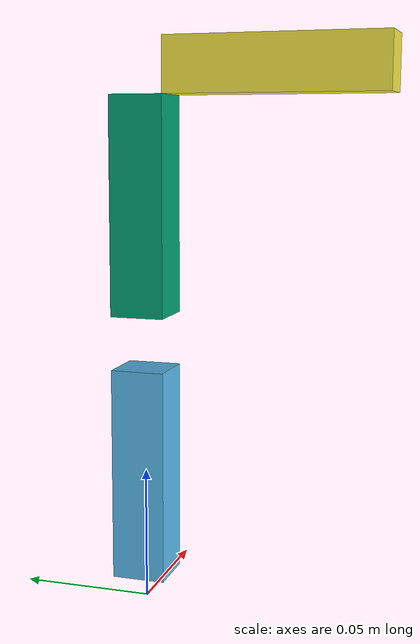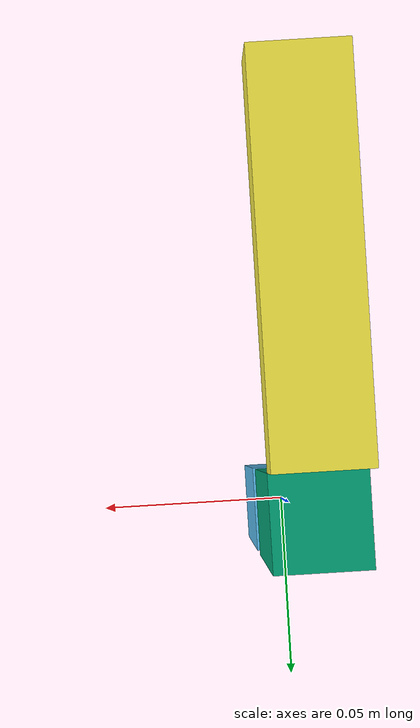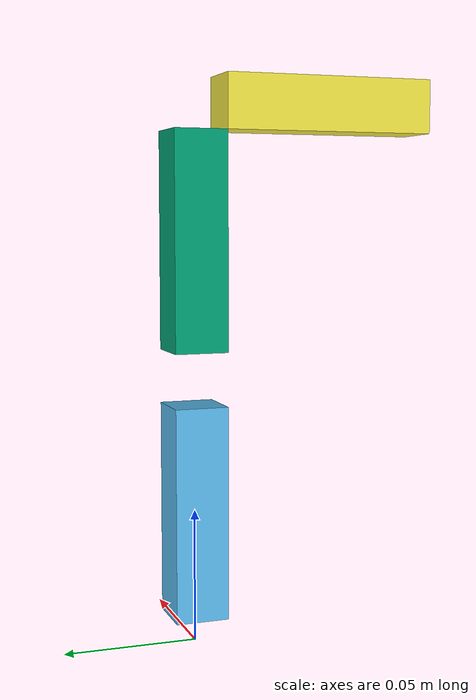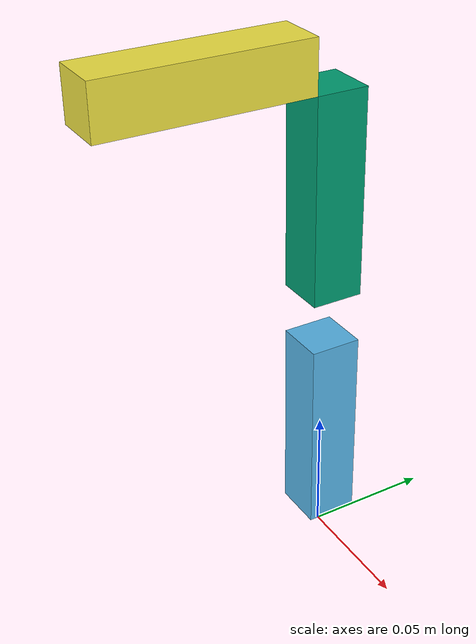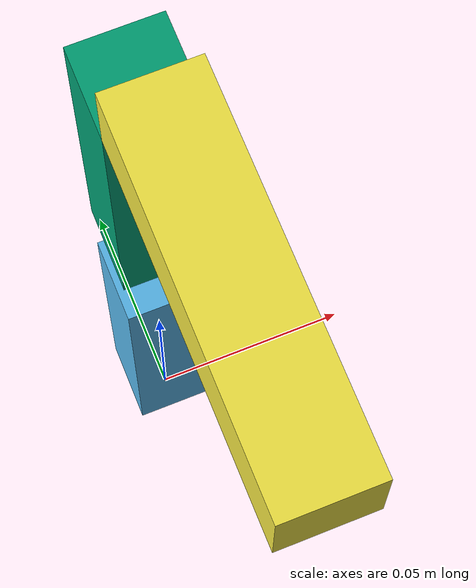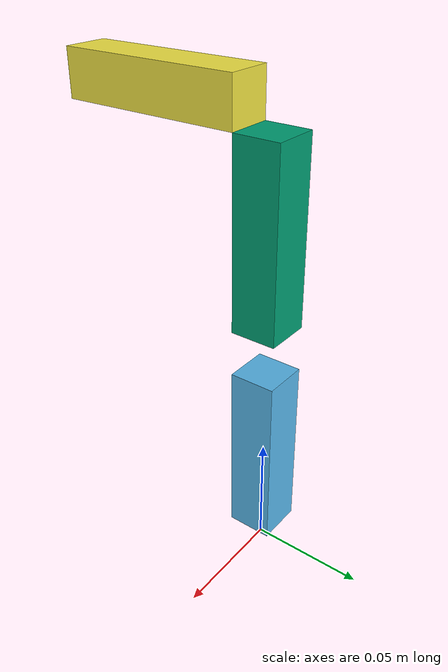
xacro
<?xml version="1.0" encoding="utf-8"?>
<robot xmlns:xacro="http://www.ros.org/wiki/xacro" name="stick">
  <!--Input arguments-->
  <xacro:arg name="xyz" default="0 0 0" />
  <xacro:arg name="rpy" default="0 0 0" />
  <xacro:arg name="rotated" default="false" />
  <xacro:arg name="robot_name" default="stick" />

  <!--Gazebo requires a joint to a link called "world" for statically mounted robots-->
  <link name="world" />
  <joint name="world_joint" type="fixed">
    <origin xyz="$(arg xyz)" rpy="$(arg rpy)" />
    <parent link="world" />
    <child link="$(arg robot_name)_link1" />
  </joint>

  <!--Create stick example links-->
  <link name="$(arg robot_name)_link1">
    <visual>
      <origin xyz="0 0 0.05" />
      <geometry>
        <box size="0.02 0.02 0.08" />
      </geometry>
    </visual>
    <collision>
      <origin xyz="0 0 0.05" />
      <geometry>
        <box size="0.02 0.02 0.08" />
      </geometry>
    </collision>
    <inertial>
      <origin xyz="0 0 0.05" />
      <mass value="${0.5*10./9.80}" />
      <inertia ixx="0.1" iyy="0.1" izz="0.1" ixy="0" ixz="0" iyz="0" />
    </inertial>
  </link>
  <link name="$(arg robot_name)_link2">
    <visual>
      <origin xyz="0 0 0.05" />
      <geometry>
        <box size="0.02 0.02 0.08" />
      </geometry>
    </visual>
    <collision>
      <origin xyz="0 0 0.05" />
      <geometry>
        <box size="0.02 0.02 0.08" />
      </geometry>
    </collision>
    <inertial>
      <origin xyz="0 0 0.05" />
      <mass value="${0.5*10./9.80}" />
      <inertia ixx="0.1" iyy="0.1" izz="0.1" ixy="0" ixz="0" iyz="0" />
    </inertial>
  </link>
  <link name="$(arg robot_name)_link3">
    <visual>
      <origin xyz="0 0 0.05" />
      <geometry>
        <box size="0.02 0.02 0.08" />
      </geometry>
    </visual>
    <collision>
      <origin xyz="0 0 0.05" />
      <geometry>
        <box size="0.02 0.02 0.08" />
      </geometry>
    </collision>
    <inertial>
      <origin xyz="0 0 0.05" />
      <mass value="${0.5*10./9.80}" />
      <inertia ixx="0.1" iyy="0.1" izz="0.1" ixy="0" ixz="0" iyz="0" />
    </inertial>
  </link>

  <!--Create stick joints-->
  <!--  Problem joint-->
  <xacro:if value="$(arg rotated)">    <!--With rotation-->
    <joint name="$(arg robot_name)_joint1" type="revolute">
      <safety_controller k_position="100.0" k_velocity="40.0" soft_lower_limit="-2.8973" soft_upper_limit="2.8973"/>
      <origin xyz="0 0 0.1" rpy="${pi/2} 0 0"/>
      <parent link="$(arg robot_name)_link1"/>
      <child link="$(arg robot_name)_link2"/>
      <axis xyz="0 0 1"/>
      <limit acceleration="15" lower="-2.9671" effort="87" upper="2.9671" velocity="2.5"/>
      <dynamics D="1" K="7000" mu_coulomb="0" mu_viscous="16" damping="0.003" friction="0.0"/>
    </joint>
  </xacro:if>
  <xacro:unless value="$(arg rotated)">
    <joint name="$(arg robot_name)_joint1" type="revolute">
      <safety_controller k_position="100.0" k_velocity="40.0" soft_lower_limit="-2.8973" soft_upper_limit="2.8973"/>
      <origin xyz="0 0 0.1" rpy="0 0 0"/>
      <parent link="$(arg robot_name)_link1"/>
      <child link="$(arg robot_name)_link2"/>
      <axis xyz="0 1 0"/>
      <limit acceleration="15" lower="-2.9671" effort="87" upper="2.9671" velocity="2.5"/>
      <dynamics D="1" K="7000" mu_coulomb="0" mu_viscous="16" damping="0.003" friction="0.0"/>
    </joint>
  </xacro:unless>

  <!--  Weight joint-->
  <joint name="$(arg robot_name)_joint2" type="revolute">
    <safety_controller k_position="100.0" k_velocity="40.0" soft_lower_limit="-2.8973" soft_upper_limit="2.8973"/>
    <origin xyz="0 0 0.1" rpy="${pi/2} 0 0"/>
    <parent link="$(arg robot_name)_link2"/>
    <child link="$(arg robot_name)_link3"/>
    <axis xyz="0 0 1"/>
    <limit acceleration="15" lower="-2.9671" effort="87" upper="2.9671" velocity="2.5"/>
    <dynamics D="1" K="7000" mu_coulomb="0" mu_viscous="16" damping="0.003" friction="0.0"/>
  </joint>

  <!--Create hardware interfaces-->
  <gazebo reference="$(arg robot_name)_joint1">
    <!-- Needed for ODE to output external wrenches on joints -->
    <provideFeedback>true</provideFeedback>
  </gazebo>
  <gazebo reference="$(arg robot_name)_joint2">
    <!-- Needed for ODE to output external wrenches on joints -->
    <provideFeedback>true</provideFeedback>
  </gazebo>
  <transmission name="$(arg robot_name)_joint1_transmission">
    <type>transmission_interface/SimpleTransmission</type>
    <joint name="$(arg robot_name)_joint1">
      <hardwareInterface>hardware_interface/EffortJointInterface</hardwareInterface>
    </joint>
    <actuator name="$(arg robot_name)_joint1_motor">
      <hardwareInterface>hardware_interface/EffortJointInterface</hardwareInterface>
    </actuator>
  </transmission>
  <transmission name="$(arg robot_name)_joint2_transmission">
    <type>transmission_interface/SimpleTransmission</type>
    <joint name="$(arg robot_name)_joint2">
      <hardwareInterface>hardware_interface/EffortJointInterface</hardwareInterface>
    </joint>
    <actuator name="$(arg robot_name)_joint2_motor">
      <hardwareInterface>hardware_interface/EffortJointInterface</hardwareInterface>
    </actuator>
  </transmission>

  <!--Load gazebo controller plugin-->
  <gazebo>
    <plugin name="gazebo_ros_control" filename="libgazebo_ros_control.so">
      <controlPeriod>0.001</controlPeriod>
      <robotSimType>gazebo_ros_control/DefaultRobotHWSim</robotSimType>
    </plugin>
    <self_collide>true</self_collide>
  </gazebo>
</robot>
